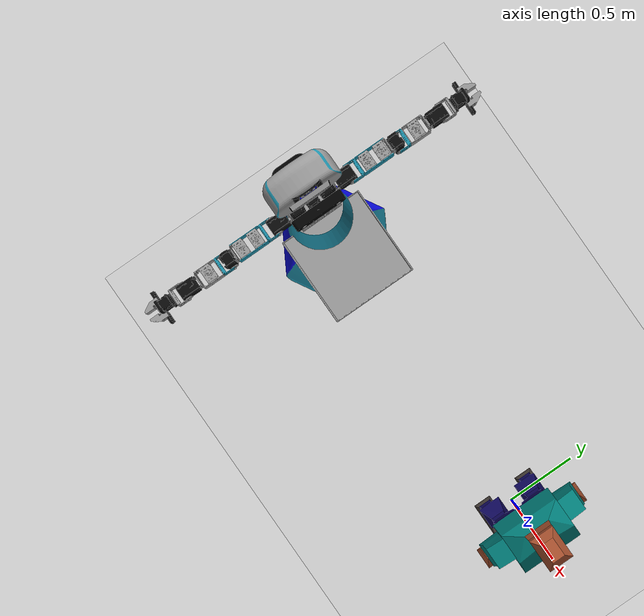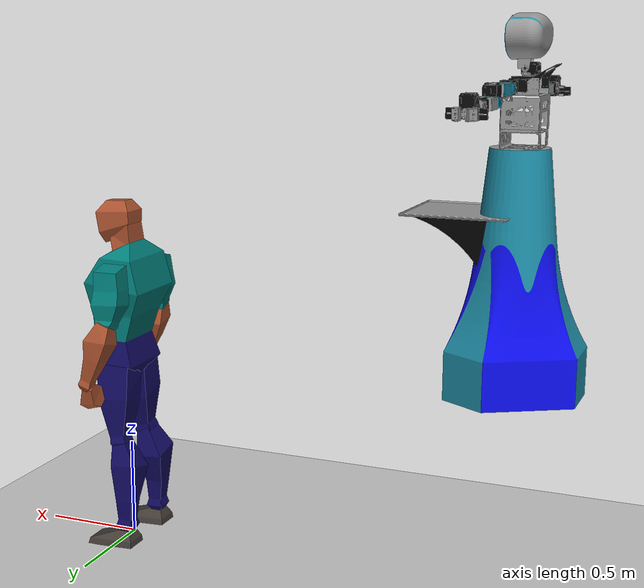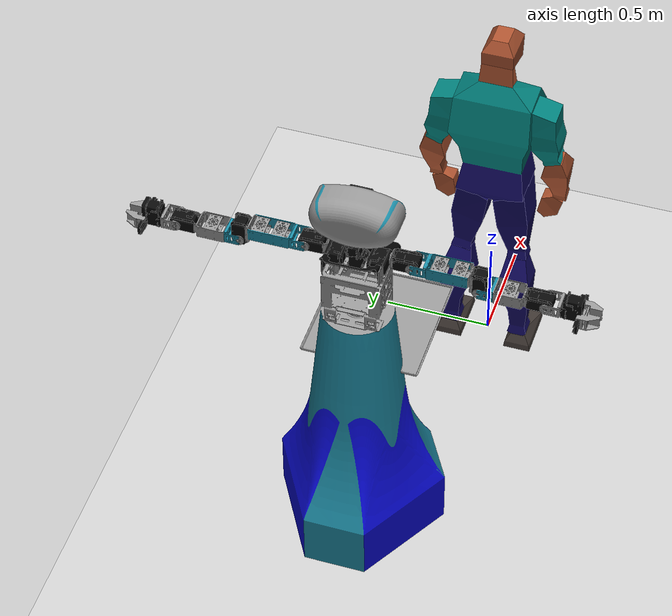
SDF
<sdf version="1.7">
 <world name="default">
  <light name="sun" type="directional">
   <pose>0 0 10 0 -0 0</pose>
   <diffuse>0.8 0.8 0.8 1</diffuse>
   <specular>0.2 0.2 0.2 1</specular>
   <attenuation>
    <range>1000</range>
    <constant>0.9</constant>
    <linear>0.01</linear>
    <quadratic>0.001</quadratic>
   </attenuation>
   <direction>0 0.5 -0.9</direction>
  </light>
  <light name="point_light" type="point">
   <pose>0 -0.377195 6.59868 0 -0 0</pose>
   <diffuse>0.784314 0.784314 0.784314 1</diffuse>
   <specular>0.0980392 0.0980392 0.0980392 1</specular>
   <attenuation>
    <range>50</range>
    <constant>0.8</constant>
    <linear>0</linear>
    <quadratic>0.001</quadratic>
   </attenuation>
   <cast_shadows>0</cast_shadows>
   <direction>0 0 -1</direction>
  </light>
  <include><uri>model://ground_plane</uri></include>
  <include><pose>-2.0 0 1.0 0 0 0</pose><uri>model://dienen_robot</uri></include>
  <include><uri>model://dienen_human</uri></include>
 </world>
</sdf>

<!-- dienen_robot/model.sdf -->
<sdf version="1.7">
  <model name="dienen_robot">

    <plugin name="navigation_plugin" filename="libdienen_navigation_plugin.so">
      <linear_speed_scale>1.25</linear_speed_scale>
      <angular_speed_scale>9.5</angular_speed_scale>
    </plugin>

    <link name="lower_body_link">
      <pose>0 0 0 0 0 0</pose>
      <inertial>
        <mass>10.0</mass>
      </inertial>
      <collision name="lower_body_collision">
        <geometry>
          <mesh>
            <uri>model://dienen_robot/collisions/lower_body_collision.dae</uri>
          </mesh>
        </geometry>
        <surface>
          <friction>
            <ode>
              <mu>10</mu>
              <mu2>10</mu2>
              <fdir1>0 0 0</fdir1>
              <slip1>0</slip1>
              <slip2>0</slip2>
            </ode>
          </friction>
        </surface>
      </collision>
      <visual name="lower_body_visual">
        <pose>0 0 0 0 0 0</pose>
        <geometry>
          <mesh>
            <uri>model://dienen_robot/meshes/lower_body.dae</uri>
          </mesh>
        </geometry>
      </visual>
    </link>

    <link name="upper_body_link">
      <pose>0 0 1.12161 0 0 0</pose>
      <inertial>
        <mass>10.0</mass>
      </inertial>
      <collision name="upper_body_collision">
        <geometry>
          <mesh>
            <uri>model://dienen_robot/collisions/upper_body_collision.dae</uri>
          </mesh>
        </geometry>
      </collision>
      <visual name="upper_body_visual">
        <geometry>
          <mesh>
            <uri>model://dienen_robot/meshes/upper_body.dae</uri>
          </mesh>
        </geometry>
      </visual>
    </link>

    <link name="depth_camera_link">
      <pose>0.10267 0 1.37778 0 0 0</pose>
      <inertial>
        <mass>10.0</mass>
      </inertial>
      <collision name="depth_camera_collision">
        <geometry>
          <mesh>
            <uri>model://dienen_robot/collisions/depth_camera_collision.dae</uri>
          </mesh>
        </geometry>
      </collision>
      <visual name="depth_camera_visual">
        <geometry>
          <mesh>
            <uri>model://dienen_robot/meshes/depth_camera.dae</uri>
          </mesh>
        </geometry>
      </visual>
      <sensor name="depth_camera" type="depth">
        <pose>0.01 0 0 0 0 0</pose>
        <update_rate>30</update_rate>
        <plugin name="depth_camera_plugin" filename="libgazebo_ros_camera.so">
          <camera_name>depth_camera</camera_name>
          <hack_baseline>0.07</hack_baseline>
          <min_depth>0.001</min_depth>
        </plugin>
        <camera>
          <horizontal_fov>1.047198</horizontal_fov>
          <image>
            <width>640</width>
            <height>480</height>
          </image>
          <clip>
            <near>0.05</near>
            <far>30</far>
          </clip>
        </camera>
      </sensor>
    </link>

    <link name="neck_link">
      <pose>-0.018237 0 1.43554 0 0 0</pose>
      <inertial>
        <mass>10.0</mass>
      </inertial>
      <collision name="neck_collision">
        <geometry>
          <mesh>
            <uri>model://dienen_robot/collisions/neck_collision.dae</uri>
          </mesh>
        </geometry>
      </collision>
      <visual name="neck_visual">
        <geometry>
          <mesh>
            <uri>model://dienen_robot/meshes/neck.dae</uri>
          </mesh>
        </geometry>
      </visual>
    </link>

    <link name="head_link">
      <pose>-0.012258 0 1.46717 0 0 0</pose>
      <inertial>
        <mass>10.0</mass>
      </inertial>
      <collision name="head_collision">
        <geometry>
          <mesh>
            <uri>model://dienen_robot/collisions/head_collision.dae</uri>
          </mesh>
        </geometry>
      </collision>
      <visual name="head_visual">
        <geometry>
          <mesh>
            <uri>model://dienen_robot/meshes/head.dae</uri>
          </mesh>
        </geometry>
      </visual>
    </link>

    <link name="camera_link">
      <pose>0.049994 0 1.66776 0 0 0</pose>
      <inertial>
        <mass>10.0</mass>
      </inertial>
      <collision name="camera_collision">
        <geometry>
          <mesh>
            <uri>model://dienen_robot/collisions/camera_collision.dae</uri>
          </mesh>
        </geometry>
      </collision>
      <visual name="camera_visual">
        <geometry>
          <mesh>
            <uri>model://dienen_robot/meshes/camera.dae</uri>
          </mesh>
        </geometry>
      </visual>
      <sensor name="camera" type="camera">
        <pose>0.01 0 0 0 0 0</pose>
        <update_rate>30</update_rate>
        <plugin name="camera_plugin" filename="libgazebo_ros_camera.so">
          <camera_name>camera</camera_name>
        </plugin>
        <camera>
          <horizontal_fov>1.047198</horizontal_fov>
          <image>
            <width>640</width>
            <height>480</height>
          </image>
          <clip>
            <near>0.1</near>
            <far>100</far>
          </clip>
        </camera>
      </sensor>
    </link>

    <link name="left_shoulder_link">
      <pose>0.026924 0.11869 1.39215 0 0 0</pose>
      <inertial>
        <mass>10.0</mass>
      </inertial>
      <collision name="left_shoulder_collision">
        <geometry>
          <mesh>
            <uri>model://dienen_robot/collisions/neck_collision.dae</uri>
          </mesh>
        </geometry>
      </collision>
      <visual name="left_shoulder_visual">
        <geometry>
          <mesh>
            <uri>model://dienen_robot/meshes/left_shoulder.dae</uri>
          </mesh>
        </geometry>
      </visual>
    </link>

    <link name="left_upper_arm_link">
      <pose>0.026924 0.201815 1.39175 0 0 0</pose>
      <inertial>
        <mass>10.0</mass>
      </inertial>
      <collision name="left_upper_arm_collision">
        <geometry>
          <mesh>
            <uri>model://dienen_robot/collisions/left_upper_arm_collision.dae</uri>
          </mesh>
        </geometry>
      </collision>
      <visual name="left_upper_arm_visual">
        <geometry>
          <mesh>
            <uri>model://dienen_robot/meshes/left_upper_arm.dae</uri>
          </mesh>
        </geometry>
      </visual>
    </link>

    <link name="left_lower_arm_link">
      <pose>0.026924 0.449757 1.34808 0 0 0</pose>
      <inertial>
        <mass>10.0</mass>
      </inertial>
      <collision name="left_lower_arm_collision">
        <geometry>
          <mesh>
            <uri>model://dienen_robot/collisions/left_lower_arm_collision.dae</uri>
          </mesh>
        </geometry>
      </collision>
      <visual name="left_lower_arm_visual">
        <geometry>
          <mesh>
            <uri>model://dienen_robot/meshes/left_lower_arm.dae</uri>
          </mesh>
        </geometry>
      </visual>
    </link>

    <link name="left_gripper_link">
      <pose>0.026924 0.693996 1.348 0 0 0</pose>
      <inertial>
        <mass>100.0</mass>
      </inertial>
      <collision name="left_gripper_collision">
        <geometry>
          <mesh>
            <uri>model://dienen_robot/collisions/left_gripper_collision.dae</uri>
          </mesh>
        </geometry>
      </collision>
      <visual name="left_gripper_visual">
        <geometry>
          <mesh>
            <uri>model://dienen_robot/meshes/left_gripper.dae</uri>
          </mesh>
        </geometry>
      </visual>
    </link>

    <link name="right_shoulder_link">
      <pose>0.026924 -0.11818 1.39215 0 0 0</pose>
      <inertial>
        <mass>10.0</mass>
      </inertial>
      <collision name="right_shoulder_collision">
        <geometry>
          <mesh>
            <uri>model://dienen_robot/collisions/right_shoulder_collision.dae</uri>
          </mesh>
        </geometry>
      </collision>
      <visual name="right_shoulder_visual">
        <geometry>
          <mesh>
            <uri>model://dienen_robot/meshes/right_shoulder.dae</uri>
          </mesh>
        </geometry>
      </visual>
    </link>

    <link name="right_upper_arm_link">
      <pose>0.026924 -0.201304 1.39175 0 0 0</pose>
      <inertial>
        <mass>10.0</mass>
      </inertial>
      <collision name="right_upper_arm_collision">
        <geometry>
          <mesh>
            <uri>model://dienen_robot/collisions/right_upper_arm_collision.dae</uri>
          </mesh>
        </geometry>
      </collision>
      <visual name="right_upper_arm_visual">
        <geometry>
          <mesh>
            <uri>model://dienen_robot/meshes/right_upper_arm.dae</uri>
          </mesh>
        </geometry>
      </visual>
    </link>

    <link name="right_lower_arm_link">
      <pose>0.026924 -0.449246 1.34808 0 0 0</pose>
      <inertial>
        <mass>10.0</mass>
      </inertial>
      <collision name="right_lower_arm_collision">
        <geometry>
          <mesh>
            <uri>model://dienen_robot/collisions/right_lower_arm_collision.dae</uri>
          </mesh>
        </geometry>
      </collision>
      <visual name="right_lower_arm_visual">
        <geometry>
          <mesh>
            <uri>model://dienen_robot/meshes/right_lower_arm.dae</uri>
          </mesh>
        </geometry>
      </visual>
    </link>

    <link name="right_gripper_link">
      <pose>0.026924 -0.693486 1.348 0 0 0</pose>
      <inertial>
        <mass>100.0</mass>
      </inertial>
      <collision name="right_gripper_collision">
        <geometry>
          <mesh>
            <uri>model://dienen_robot/collisions/right_gripper_collision.dae</uri>
          </mesh>
        </geometry>
      </collision>
      <visual name="right_gripper_visual">
        <geometry>
          <mesh>
            <uri>model://dienen_robot/meshes/right_gripper.dae</uri>
          </mesh>
        </geometry>
      </visual>
    </link>

    <joint name="upper_body_joint" type="fixed">
      <parent>lower_body_link</parent>
      <child>upper_body_link</child>
    </joint>

    <joint name="depth_camera_joint" type="fixed">
      <parent>upper_body_link</parent>
      <child>depth_camera_link</child>
    </joint>

    <joint name="neck_joint" type="fixed">
      <parent>upper_body_link</parent>
      <child>neck_link</child>
      <axis>
        <xyz>0 0 1</xyz>
      </axis>
    </joint>

    <joint name="head_joint" type="fixed">
      <parent>neck_link</parent>
      <child>head_link</child>
      <axis>
        <xyz>0 -1 0</xyz>
      </axis>
    </joint>

    <joint name="camera_joint" type="fixed">
      <parent>head_link</parent>
      <child>camera_link</child>
    </joint>

    <joint name="left_shoulder_joint" type="fixed">
      <parent>upper_body_link</parent>
      <child>left_shoulder_link</child>
      <axis>
        <xyz>0 -1 0</xyz>
      </axis>
    </joint>

    <joint name="left_upper_arm_joint" type="revolute">
      <parent>left_shoulder_link</parent>
      <child>left_upper_arm_link</child>
      <axis>
        <xyz>-1 0 0</xyz>
        <limit>
          <lower>-1.04719755</lower>
          <upper>1.04719755</upper>
        </limit>
      </axis>
    </joint>

    <joint name="left_lower_arm_joint" type="fixed">
      <parent>left_upper_arm_link</parent>
      <child>left_lower_arm_link</child>
      <axis>
        <xyz>-1 0 0</xyz>
      </axis>
    </joint>

    <joint name="left_gripper_joint" type="fixed">
      <parent>left_lower_arm_link</parent>
      <child>left_gripper_link</child>
      <axis>
        <xyz>-1 0 0</xyz>
      </axis>
    </joint>

    <joint name="right_shoulder_joint" type="fixed">
      <parent>upper_body_link</parent>
      <child>right_shoulder_link</child>
      <axis>
        <xyz>0 -1 0</xyz>
      </axis>
    </joint>

    <joint name="right_upper_arm_joint" type="revolute">
      <parent>right_shoulder_link</parent>
      <child>right_upper_arm_link</child>
      <axis>
        <xyz>1 0 0</xyz>
        <limit>
          <lower>-1.04719755</lower>
          <upper>1.04719755</upper>
        </limit>
      </axis>
    </joint>

    <joint name="right_lower_arm_joint" type="fixed">
      <parent>right_upper_arm_link</parent>
      <child>right_lower_arm_link</child>
      <axis>
        <xyz>1 0 0</xyz>
      </axis>
    </joint>

    <joint name="right_gripper_joint" type="fixed">
      <parent>right_lower_arm_link</parent>
      <child>right_gripper_link</child>
      <axis>
        <xyz>1 0 0</xyz>
      </axis>
    </joint>

  </model>
</sdf>

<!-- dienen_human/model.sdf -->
<sdf version="1.7">
  <model name="dienen_human">

    <plugin name="dienen_human_legs" filename="libbeine_legs_plugin.so">
      <left_hip_pitch_joint>left_upper_leg_joint</left_hip_pitch_joint>
      <left_knee_pitch_joint>left_lower_leg_joint</left_knee_pitch_joint>
      <left_ankle_pitch_joint>left_foot_joint</left_ankle_pitch_joint>
      <right_hip_pitch_joint>right_upper_leg_joint</right_hip_pitch_joint>
      <right_knee_pitch_joint>right_lower_leg_joint</right_knee_pitch_joint>
      <right_ankle_pitch_joint>right_foot_joint</right_ankle_pitch_joint>
      <joint_force_strength>1000.0</joint_force_strength>
      <joint_force_smoothness>0.2</joint_force_smoothness>
    </plugin>

    <link name="torso_link">
      <must_be_base_link>true</must_be_base_link>
      <pose>0 0 1.13312 0 0 0</pose>
      <inertial>
        <mass>0.1</mass>
      </inertial>
      <collision name="torso_collision">
        <geometry>
          <mesh>
            <uri>model://dienen_human/meshes/torso.dae</uri>
          </mesh>
        </geometry>
      </collision>
      <visual name="torso_visual">
        <geometry>
          <mesh>
            <uri>model://dienen_human/meshes/torso.dae</uri>
          </mesh>
        </geometry>
      </visual>
    </link>

    <link name="neck_link">
      <pose>0 0 1.55055 0 0 0</pose>
      <inertial>
        <mass>0.1</mass>
      </inertial>
      <collision name="neck_collision">
        <geometry>
          <mesh>
            <uri>model://dienen_human/meshes/neck.dae</uri>
          </mesh>
        </geometry>
      </collision>
      <visual name="neck_visual">
        <geometry>
          <mesh>
            <uri>model://dienen_human/meshes/neck.dae</uri>
          </mesh>
        </geometry>
      </visual>
    </link>

    <link name="head_link">
      <pose>0 0 1.62812 0 0 0</pose>
      <inertial>
        <mass>0.1</mass>
      </inertial>
      <collision name="head_collision">
        <geometry>
          <mesh>
            <uri>model://dienen_human/meshes/head.dae</uri>
          </mesh>
        </geometry>
      </collision>
      <visual name="head_visual">
        <geometry>
          <mesh>
            <uri>model://dienen_human/meshes/head.dae</uri>
          </mesh>
        </geometry>
      </visual>
    </link>

    <link name="left_upper_arm_link">
      <pose>-0.031476 0.168975 1.42403 0 0 0</pose>
      <inertial>
        <mass>0.1</mass>
      </inertial>
      <collision name="left_upper_arm_collision">
        <geometry>
          <mesh>
            <uri>model://dienen_human/meshes/left_upper_arm.dae</uri>
          </mesh>
        </geometry>
      </collision>
      <visual name="left_upper_arm_visual">
        <geometry>
          <mesh>
            <uri>model://dienen_human/meshes/left_upper_arm.dae</uri>
          </mesh>
        </geometry>
      </visual>
    </link>

    <link name="left_lower_arm_link">
      <pose>-0.033132 0.274336 1.20635 0 0 0</pose>
      <inertial>
        <mass>0.1</mass>
      </inertial>
      <collision name="left_lower_arm_collision">
        <geometry>
          <mesh>
            <uri>model://dienen_human/meshes/left_lower_arm.dae</uri>
          </mesh>
        </geometry>
      </collision>
      <visual name="left_lower_arm_visual">
        <geometry>
          <mesh>
            <uri>model://dienen_human/meshes/left_lower_arm.dae</uri>
          </mesh>
        </geometry>
      </visual>
    </link>

    <link name="left_hand_link">
      <pose>0.082831 0.27036 0.857133 0 0 0</pose>
      <inertial>
        <mass>0.1</mass>
      </inertial>
      <collision name="left_hand_collision">
        <geometry>
          <mesh>
            <uri>model://dienen_human/meshes/left_hand.dae</uri>
          </mesh>
        </geometry>
      </collision>
      <visual name="left_hand_visual">
        <geometry>
          <mesh>
            <uri>model://dienen_human/meshes/left_hand.dae</uri>
          </mesh>
        </geometry>
      </visual>
    </link>

    <link name="right_upper_arm_link">
      <pose>-0.031476 -0.168975 1.42403 0 0 0</pose>
      <inertial>
        <mass>0.1</mass>
      </inertial>
      <collision name="right_upper_arm_collision">
        <geometry>
          <mesh>
            <uri>model://dienen_human/meshes/right_upper_arm.dae</uri>
          </mesh>
        </geometry>
      </collision>
      <visual name="right_upper_arm_visual">
        <geometry>
          <mesh>
            <uri>model://dienen_human/meshes/right_upper_arm.dae</uri>
          </mesh>
        </geometry>
      </visual>
    </link>

    <link name="right_lower_arm_link">
      <pose>-0.033132 -0.274336 1.20635 0 0 0</pose>
      <inertial>
        <mass>0.1</mass>
      </inertial>
      <collision name="right_lower_arm_collision">
        <geometry>
          <mesh>
            <uri>model://dienen_human/meshes/right_lower_arm.dae</uri>
          </mesh>
        </geometry>
      </collision>
      <visual name="right_lower_arm_visual">
        <geometry>
          <mesh>
            <uri>model://dienen_human/meshes/right_lower_arm.dae</uri>
          </mesh>
        </geometry>
      </visual>
    </link>

    <link name="right_hand_link">
      <pose>0.082831 -0.27036 0.857133 0 0 0</pose>
      <inertial>
        <mass>0.1</mass>
      </inertial>
      <collision name="right_hand_collision">
        <geometry>
          <mesh>
            <uri>model://dienen_human/meshes/right_hand.dae</uri>
          </mesh>
        </geometry>
      </collision>
      <visual name="right_hand_visual">
        <geometry>
          <mesh>
            <uri>model://dienen_human/meshes/right_hand.dae</uri>
          </mesh>
        </geometry>
      </visual>
    </link>

    <link name="left_upper_leg_link">
      <pose>0.01491 0.071566 0.923397 0 0 0</pose>
      <inertial>
        <mass>2.0</mass>
      </inertial>
      <collision name="left_upper_leg_collision">
        <geometry>
          <mesh>
            <uri>model://dienen_human/meshes/left_upper_leg.dae</uri>
          </mesh>
        </geometry>
      </collision>
      <visual name="left_upper_leg_visual">
        <geometry>
          <mesh>
            <uri>model://dienen_human/meshes/left_upper_leg.dae</uri>
          </mesh>
        </geometry>
      </visual>
    </link>

    <link name="left_lower_leg_link">
      <pose>-0.01491 0.12524 0.547677 0 0 0</pose>
      <inertial>
        <mass>2.0</mass>
      </inertial>
      <collision name="left_lower_leg_collision">
        <geometry>
          <mesh>
            <uri>model://dienen_human/meshes/left_lower_leg.dae</uri>
          </mesh>
        </geometry>
      </collision>
      <visual name="left_lower_leg_visual">
        <geometry>
          <mesh>
            <uri>model://dienen_human/meshes/left_lower_leg.dae</uri>
          </mesh>
        </geometry>
      </visual>
    </link>

    <link name="left_foot_link">
      <pose>-0.049698 0.163011 0.085638 0 0 0</pose>
      <inertial>
        <mass>2.0</mass>
      </inertial>
      <collision name="left_foot_collision">
        <geometry>
          <mesh>
            <uri>model://dienen_human/meshes/left_foot.dae</uri>
          </mesh>
        </geometry>
      </collision>
      <visual name="left_foot_visual">
        <pose>0 0 0 0 0 0</pose>
        <geometry>
          <mesh>
            <uri>model://dienen_human/meshes/left_foot.dae</uri>
          </mesh>
        </geometry>
      </visual>
    </link>

    <link name="right_upper_leg_link">
      <pose>0.01491 -0.071566 0.923397 0 0 0</pose>
      <inertial>
        <mass>2.0</mass>
      </inertial>
      <collision name="right_upper_leg_collision">
        <geometry>
          <mesh>
            <uri>model://dienen_human/meshes/right_upper_leg.dae</uri>
          </mesh>
        </geometry>
      </collision>
      <visual name="right_upper_leg_visual">
        <geometry>
          <mesh>
            <uri>model://dienen_human/meshes/right_upper_leg.dae</uri>
          </mesh>
        </geometry>
      </visual>
    </link>

    <link name="right_lower_leg_link">
      <pose>-0.01491 -0.12524 0.547677 0 0 0</pose>
      <inertial>
        <mass>2.0</mass>
      </inertial>
      <collision name="right_lower_leg_collision">
        <geometry>
          <mesh>
            <uri>model://dienen_human/meshes/right_lower_leg.dae</uri>
          </mesh>
        </geometry>
      </collision>
      <visual name="right_lower_leg_visual">
        <geometry>
          <mesh>
            <uri>model://dienen_human/meshes/right_lower_leg.dae</uri>
          </mesh>
        </geometry>
      </visual>
    </link>

    <link name="right_foot_link">
      <pose>-0.049698 -0.163011 0.085638 0 0 0</pose>
      <inertial>
        <mass>2.0</mass>
      </inertial>
      <collision name="right_foot_collision">
        <geometry>
          <mesh>
            <uri>model://dienen_human/meshes/right_foot.dae</uri>
          </mesh>
        </geometry>
      </collision>
      <visual name="right_foot_visual">
        <pose>0 0 0 0 0 0</pose>
        <geometry>
          <mesh>
            <uri>model://dienen_human/meshes/right_foot.dae</uri>
          </mesh>
        </geometry>
      </visual>
    </link>

    <joint name="neck_joint" type="fixed">
      <parent>torso_link</parent>
      <child>neck_link</child>
      <axis>
        <xyz>0 0 1</xyz>
      </axis>
    </joint>

    <joint name="head_joint" type="fixed">
      <parent>neck_link</parent>
      <child>head_link</child>
      <axis>
        <xyz>0 -1 0</xyz>
      </axis>
    </joint>

    <joint name="left_upper_arm_joint" type="fixed">
      <parent>torso_link</parent>
      <child>left_upper_arm_link</child>
      <axis>
        <xyz>0 -1 0</xyz>
      </axis>
    </joint>

    <joint name="left_lower_arm_joint" type="fixed">
      <parent>left_upper_arm_link</parent>
      <child>left_lower_arm_link</child>
      <axis>
        <xyz>0 -1 0</xyz>
      </axis>
    </joint>

    <joint name="left_hand_joint" type="fixed">
      <parent>left_lower_arm_link</parent>
      <child>left_hand_link</child>
      <axis>
        <xyz>0 -1 0</xyz>
      </axis>
    </joint>

    <joint name="right_upper_arm_joint" type="fixed">
      <parent>torso_link</parent>
      <child>right_upper_arm_link</child>
      <axis>
        <xyz>0 -1 0</xyz>
      </axis>
    </joint>

    <joint name="right_lower_arm_joint" type="fixed">
      <parent>right_upper_arm_link</parent>
      <child>right_lower_arm_link</child>
      <axis>
        <xyz>0 -1 0</xyz>
      </axis>
    </joint>

    <joint name="right_hand_joint" type="fixed">
      <parent>right_lower_arm_link</parent>
      <child>right_hand_link</child>
      <axis>
        <xyz>0 -1 0</xyz>
      </axis>
    </joint>

    <joint name="left_upper_leg_joint" type="revolute">
      <parent>torso_link</parent>
      <child>left_upper_leg_link</child>
      <axis>
        <xyz>0 -1 0</xyz>
        <limit>
          <lower>0.0</lower>
          <upper>0.785398</upper>
        </limit>
      </axis>
    </joint>

    <joint name="left_lower_leg_joint" type="revolute">
      <parent>left_upper_leg_link</parent>
      <child>left_lower_leg_link</child>
      <axis>
        <xyz>0 -1 0</xyz>
        <limit>
          <lower>-1.5708</lower>
          <upper>0.0</upper>
        </limit>
      </axis>
    </joint>

    <joint name="left_foot_joint" type="revolute">
      <parent>left_lower_leg_link</parent>
      <child>left_foot_link</child>
      <axis>
        <xyz>0 -1 0</xyz>
        <limit>
          <lower>0.0</lower>
          <upper>0.785398</upper>
        </limit>
      </axis>
    </joint>

    <joint name="right_upper_leg_joint" type="revolute">
      <parent>torso_link</parent>
      <child>right_upper_leg_link</child>
      <axis>
        <xyz>0 -1 0</xyz>
        <limit>
          <lower>0.0</lower>
          <upper>0.785398</upper>
        </limit>
      </axis>
    </joint>

    <joint name="right_lower_leg_joint" type="revolute">
      <parent>right_upper_leg_link</parent>
      <child>right_lower_leg_link</child>
      <axis>
        <xyz>0 -1 0</xyz>
        <limit>
          <lower>-1.5708</lower>
          <upper>0.0</upper>
        </limit>
      </axis>
    </joint>

    <joint name="right_foot_joint" type="revolute">
      <parent>right_lower_leg_link</parent>
      <child>right_foot_link</child>
      <axis>
        <xyz>0 -1 0</xyz>
        <limit>
          <lower>0.0</lower>
          <upper>0.785398</upper>
        </limit>
      </axis>
    </joint>

  </model>
</sdf>
